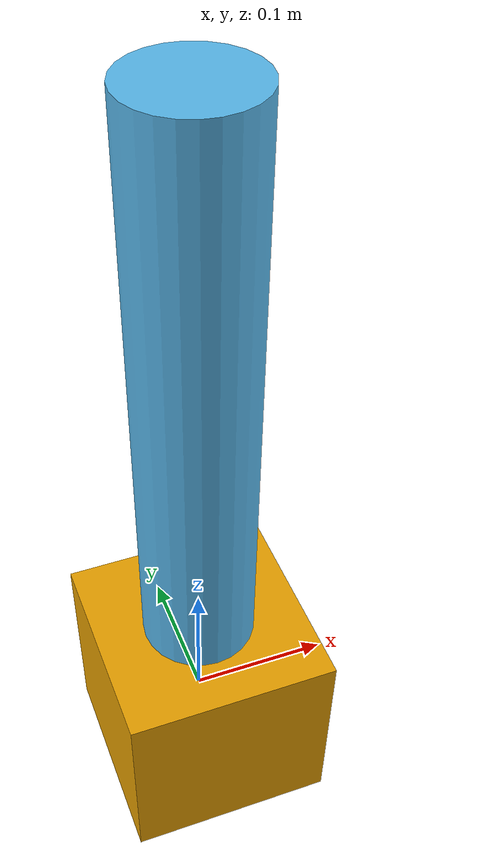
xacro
<?xml version="1.0"?>
<robot name="panda_joint1_only" xmlns:xacro="http://www.ros.org/wiki/xacro">
  <xacro:arg name="is_ignition" default="false" />
  <xacro:arg name="enable_ros2_control" default="true" />

  <link name="panda_link0">
    <visual>
      <geometry>
        <box size="0.15 0.15 0.15"/>
      </geometry>
    </visual>
    <collision>
      <geometry>
        <box size="0.15 0.15 0.15"/>
      </geometry>
    </collision>
    <inertial>
      <origin xyz="0 0 0" rpy="0 0 0"/>
      <mass value="1.0"/>
      <inertia ixx="0.01" ixy="0.0" ixz="0.0" iyy="0.01" iyz="0.0" izz="0.01"/>
    </inertial>
  </link>

  <link name="panda_link1">
    <visual>
      <origin xyz="0 0 0.2" rpy="0 0 0"/>
      <geometry>
        <cylinder radius="0.04" length="0.4"/>
      </geometry>
    </visual>
    <collision>
      <origin xyz="0 0 0.2" rpy="0 0 0"/>
      <geometry>
        <cylinder radius="0.04" length="0.4"/>
      </geometry>
    </collision>
    <inertial>
      <origin xyz="0 0 0.2" rpy="0 0 0"/>
      <mass value="1.0"/>
      <inertia ixx="0.02" ixy="0.0" ixz="0.0" iyy="0.02" iyz="0.0" izz="0.005"/>
    </inertial>
  </link>
  <joint name="panda_joint1" type="revolute">
    <origin xyz="0 0 0.075" rpy="0 0 0"/>
    <parent link="panda_link0"/>
    <child link="panda_link1"/>
    <axis xyz="0 0 1"/>
    <dynamics damping="0.1" friction="0.0"/>
    <limit effort="30.0" lower="-2.9671" upper="2.9671" velocity="10.0"/>
  </joint>
  <xacro:include filename="$(find panda_description)/urdf/gazebo.xacro" />
  <xacro:include filename="$(find panda_description)/urdf/ros2control.xacro" />
</robot>
